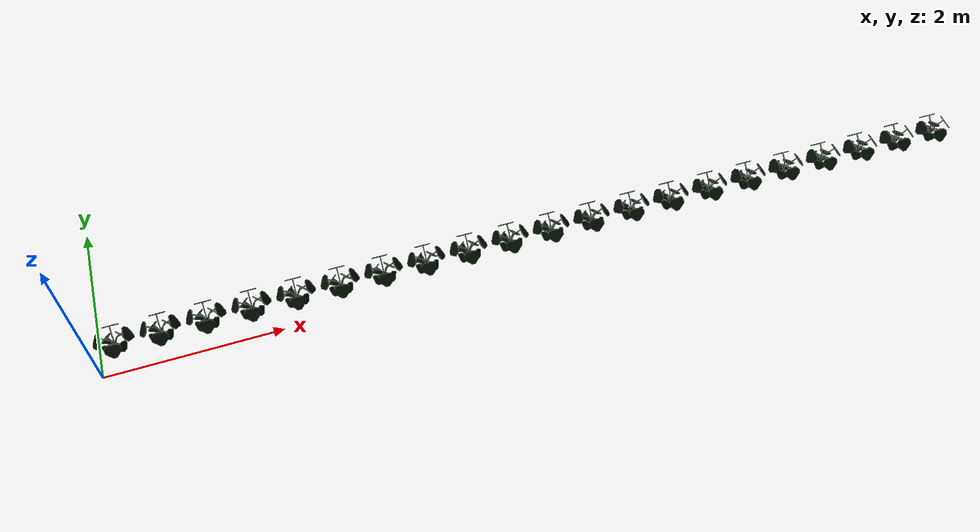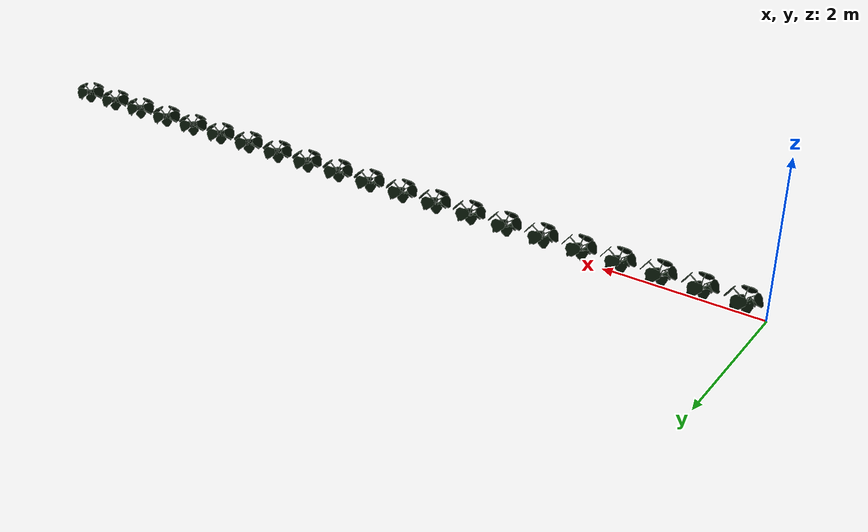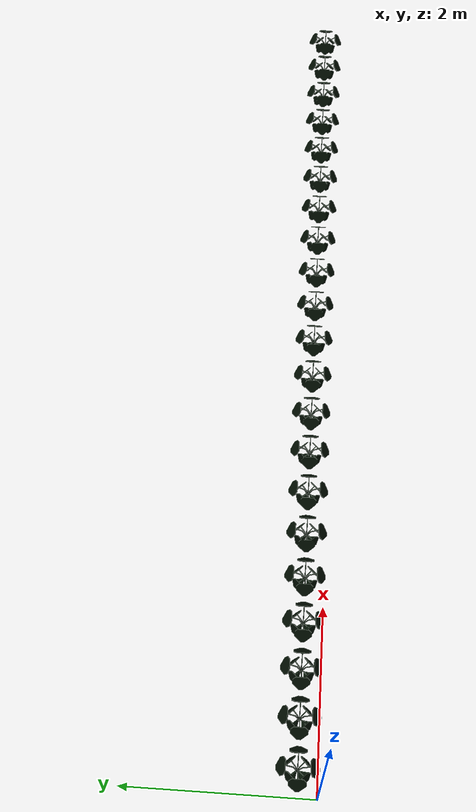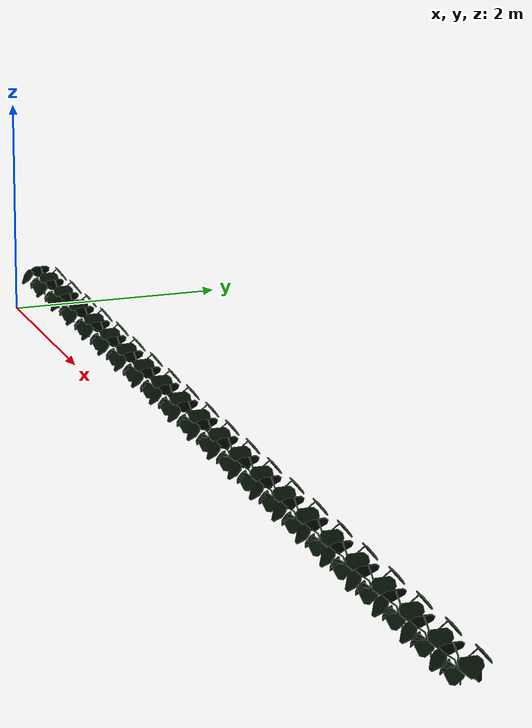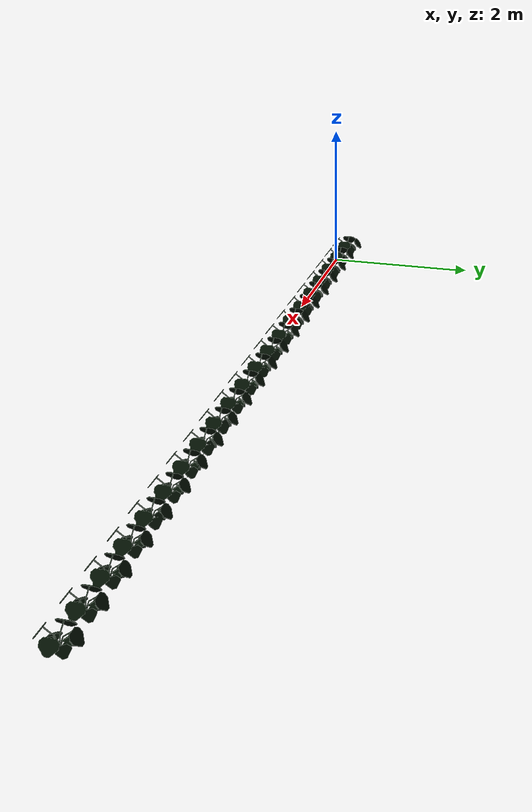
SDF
<?xml version="1.0" ?>
<sdf version="1.5">

<model name="plant21">
<static>1</static>
<pose>0.0 0.0 0.0 1.5707 0.0 1.5707</pose>

  <link name="link">

    <visual name="visual">
      <geometry>
        <mesh>
          <uri>model://plant21/plant21.stl</uri>
        </mesh>
      </geometry>
      <material>
        <lighting>1</lighting>
        <ambient>0.0 0.5 0.0 1</ambient>
        <diffuse>0.0 0.05 0.0 1</diffuse>
        <specular>0.0 0.01 0.0 1</specular>
        <emissive>0 0 0 1</emissive>
        <shader type='vertex'>
          <normal_map>__default__</normal_map>
        </shader>
      </material>
      <cast_shadows>0</cast_shadows>
    </visual>

  </link>
</model>
</sdf>
